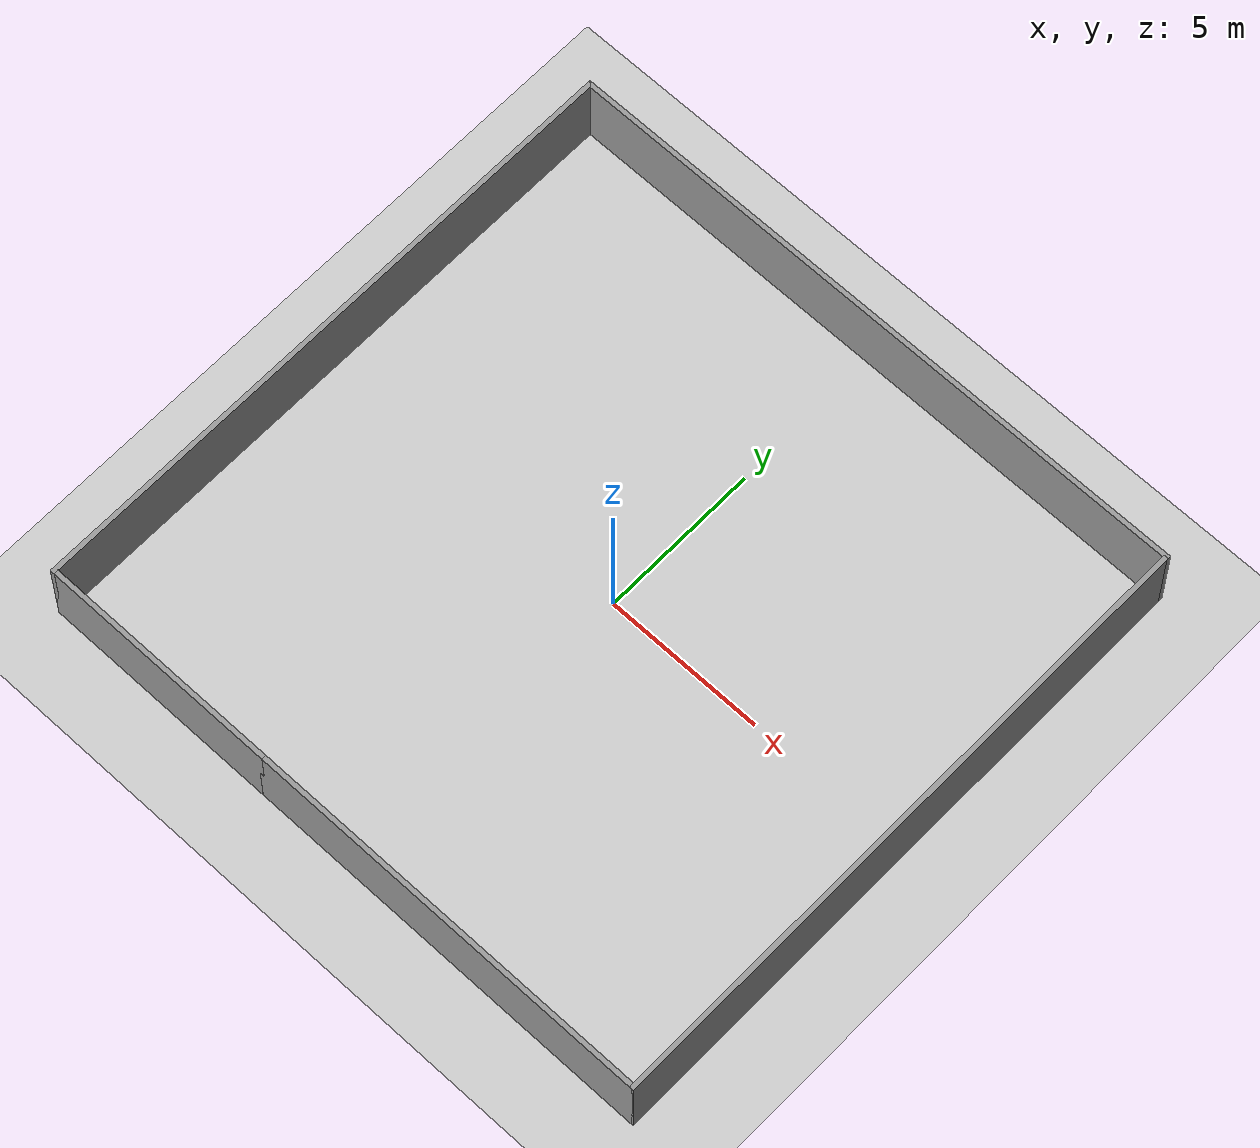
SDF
<sdf version="1.6">
 <world name="default">
  <light name="sun" type="directional">
   <pose>0 0 10 0 -0 0</pose>
   <diffuse>0.8 0.8 0.8 1</diffuse>
   <specular>0.2 0.2 0.2 1</specular>
   <attenuation>
    <range>1000</range>
    <constant>0.9</constant>
    <linear>0.01</linear>
    <quadratic>0.001</quadratic>
   </attenuation>
   <direction>-0.5 0.1 -0.9</direction>
  </light>
  <model name="ground_plane">
   <static>1</static>
   <link name="link">
    <collision name="collision">
     <geometry><plane><normal>0 0 1</normal><size>100 100</size></plane></geometry>
     <surface>
      <contact><collide_bitmask>65535</collide_bitmask></contact>
      <friction><ode><mu>100</mu><mu2>50</mu2></ode></friction>
     </surface>
    </collision>
    <visual name="visual">
     <cast_shadows>0</cast_shadows>
     <geometry><plane><normal>0 0 1</normal><size>100 100</size></plane></geometry>
     <material>
      <script><uri>file://media/materials/scripts/gazebo.material</uri><name>Gazebo/Grey</name></script>
     </material>
    </visual>
   </link>
  </model>
  <gravity>0 0 -9.8</gravity>
  <magnetic_field>6e-06 2.3e-05 -4.2e-05</magnetic_field>
  <atmosphere type="adiabatic"/>
  <physics name="default_physics" default="0" type="ode">
   <max_step_size>0.001</max_step_size>
   <real_time_factor>1</real_time_factor>
   <real_time_update_rate>1000</real_time_update_rate>
  </physics>
  <scene><ambient>0.4 0.4 0.4 1</ambient><background>0.7 0.7 0.7 1</background><shadows>1</shadows></scene>
  <audio><device>default</device></audio>
  <spherical_coordinates>
   <surface_model>EARTH_WGS84</surface_model>
   <latitude_deg>0</latitude_deg>
   <longitude_deg>0</longitude_deg>
   <elevation>0</elevation>
   <heading_deg>0</heading_deg>
  </spherical_coordinates>
  <model name="Untitled">
   <pose>-0.025108 -0.073052 0 0 -0 0</pose>
   <link name="Wall_15">
    <collision name="Wall_15_Collision">
     <geometry><box><size>13 0.15 2.5</size></box></geometry>
     <pose>0 0 1.25 0 -0 0</pose>
    </collision>
    <visual name="Wall_15_Visual">
     <pose>0 0 1.25 0 -0 0</pose>
     <geometry><box><size>13 0.15 2.5</size></box></geometry>
     <material>
      <script><uri>file://media/materials/scripts/gazebo.material</uri><name>Gazebo/Grey</name></script>
      <ambient>1 1 1 1</ambient>
     </material>
     <meta><layer>0</layer></meta>
    </visual>
    <pose>3.75 -9.925 0 0 -0 0</pose>
   </link>
   <link name="Wall_16">
    <collision name="Wall_16_Collision">
     <geometry><box><size>20 0.15 2.5</size></box></geometry>
     <pose>0 0 1.25 0 -0 0</pose>
    </collision>
    <visual name="Wall_16_Visual">
     <pose>0 0 1.25 0 -0 0</pose>
     <geometry><box><size>20 0.15 2.5</size></box></geometry>
     <material>
      <script><uri>file://media/materials/scripts/gazebo.material</uri><name>Gazebo/Grey</name></script>
      <ambient>1 1 1 1</ambient>
     </material>
     <meta><layer>0</layer></meta>
    </visual>
    <pose>10.175 0 0 0 -0 1.5708</pose>
   </link>
   <link name="Wall_17">
    <collision name="Wall_17_Collision">
     <geometry><box><size>20.5 0.15 2.5</size></box></geometry>
     <pose>0 0 1.25 0 -0 0</pose>
    </collision>
    <visual name="Wall_17_Visual">
     <pose>0 0 1.25 0 -0 0</pose>
     <geometry><box><size>20.5 0.15 2.5</size></box></geometry>
     <material>
      <script><uri>file://media/materials/scripts/gazebo.material</uri><name>Gazebo/Grey</name></script>
      <ambient>1 1 1 1</ambient>
     </material>
     <meta><layer>0</layer></meta>
    </visual>
    <pose>0 9.925 0 0 -0 3.14159</pose>
   </link>
   <link name="Wall_18">
    <collision name="Wall_18_Collision">
     <geometry><box><size>20 0.15 2.5</size></box></geometry>
     <pose>0 0 1.25 0 -0 0</pose>
    </collision>
    <visual name="Wall_18_Visual">
     <pose>0 0 1.25 0 -0 0</pose>
     <geometry><box><size>20 0.15 2.5</size></box></geometry>
     <material>
      <script><uri>file://media/materials/scripts/gazebo.material</uri><name>Gazebo/Grey</name></script>
      <ambient>1 1 1 1</ambient>
     </material>
     <meta><layer>0</layer></meta>
    </visual>
    <pose>-10.175 0 0 0 -0 -1.5708</pose>
   </link>
   <link name="Wall_19">
    <collision name="Wall_19_Collision">
     <geometry><box><size>7.65 0.15 2.5</size></box></geometry>
     <pose>0 0 1.25 0 -0 0</pose>
    </collision>
    <visual name="Wall_19_Visual">
     <pose>0 0 1.25 0 -0 0</pose>
     <geometry><box><size>7.65 0.15 2.5</size></box></geometry>
     <material>
      <script><uri>file://media/materials/scripts/gazebo.material</uri><name>Gazebo/Grey</name></script>
      <ambient>1 1 1 1</ambient>
     </material>
     <meta><layer>0</layer></meta>
    </visual>
    <pose>-6.425 -9.925 0 0 -0 0</pose>
   </link>
   <static>1</static>
  </model>
 </world>
</sdf>
